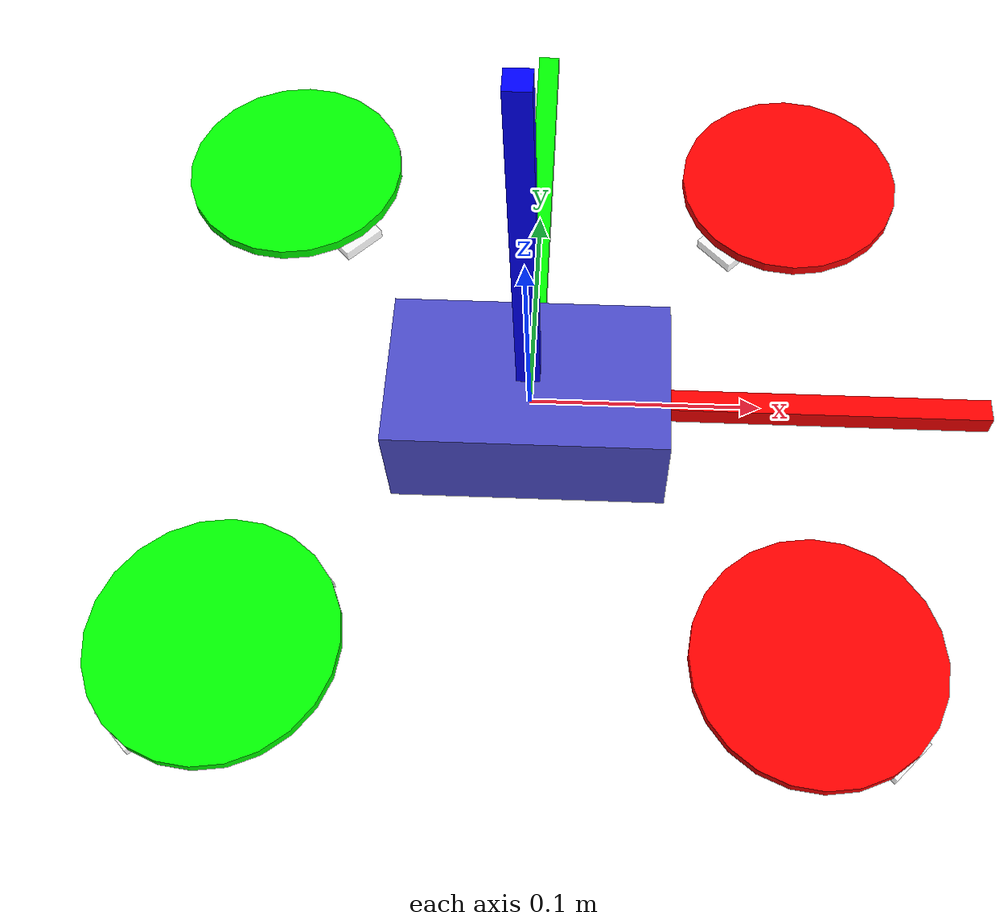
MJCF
<!-- written by Inkyu Sa, enddl22@gmail.com -->

<mujoco model="quadrotor0">
	<compiler inertiafromgeom="false" coordinate="local"/>
	<option	timestep="0.001" gravity="0 0 -9.81" density="1" viscosity="1e-5" />
	<worldbody>
		<body name="quadrotor" pos="0 0 0">
			<inertial pos="0 0 0" mass="1.0" diaginertia="0.0042 0.0042 0.0081"/>
			<geom name="core" type="box" pos="0 0 0" quat = "1. 0. 0. 0" size="0.06 0.035 0.025"  rgba="0.3 0.3 0.8 1" mass = ".0"/>

			<geom name="a00" type="box" pos="0.117 0.117 0.0" size="0.05 0.01 0.0025"  quat = ".924 0.0 0.0 0.383" rgba="1 1 1 0.7" mass = ".0"/>
			<geom name="a10" type="box" pos="0.117 -0.117 0.0" size="0.05 0.01 0.0025"  quat = ".383 0.0 0.0 0.924" rgba="1 1 1 0.7" mass = ".0"/>
			<geom name="a20" type="box" pos="-0.117 -0.117 0.0" size="0.05 0.01 0.0025"  quat = "-.383 0.0 0.0 0.924" rgba="1 1 1 0.7" mass = ".0"/>
			<geom name="a30" type="box" pos="-0.117 0.117 0.0" size="0.05 0.01 0.0025"  quat = ".924 0.0 0.0 -0.383" rgba="1 1 1 0.7" mass = ".0"/>

			<joint name="root"   type="free" damping="0" armature="0" pos="0 0 0" />

			<!-- Actuator sites to attach actuators, make it invisible -->
            <site name="thrust" type="box" pos="0 0 0"  size="0.035 0.035 0.035"  quat = "1.0 0.0 0.0 0." rgba="0 1 1 0" />
            <site name="rateX"  type="box" pos="0 0 0" quat = "1. 0. 0. 0."  size="0.06 0.035 0.025" rgba="0 1 1 0"/>
            <site name="rateY"  type="box" pos="0 0 0" quat = "1. 0. 0. 0."  size="0.06 0.035 0.025" rgba="0 1 1 0"/>
            <site name="rateZ"  type="box" pos="0 0 0" quat = "1. 0. 0. 0."  size="0.06 0.035 0.025" rgba="0 1 1 0"/>

			<!-- Thruster geometries for collisions since site's are excluded from collision checking -->
            <geom name="thruster0" type="cylinder" pos=" 0.117  0.117  0.01" size="0.05 0.0025"  quat = "1.0 0.0 0.0 0." rgba="1 0.0 0.0 1" mass = ".0"/>
            <geom name="thruster1" type="cylinder" pos=" 0.117 -0.117  0.01" size="0.05 0.0025"  quat = "1.0 0.0 0.0 0." rgba="1 0.0 0.0 1" mass = ".0"/>
            <geom name="thruster2" type="cylinder" pos="-0.117 -0.117  0.01" size="0.05 0.0025"  quat = "1.0 0.0 0.0 0." rgba="0 1 0 1" mass = ".0"/>
            <geom name="thruster3" type="cylinder" pos="-0.117 0.117  0.01" size="0.05 0.0025"  quat = "1.0 0.0 0.0 0." rgba="0 1 0 1" mass = ".0"/>

            <!-- Visualization of the coordinate frame -->
			<site name="qcX" type="box" pos="0.1 0.0 0.0" size="0.1 0.005 0.005"  quat = " 1.000  0.0  0.0    0."     rgba="1 0 0 1" />
			<site name="qcY" type="box" pos="0.0 0.1 0.0" size="0.1 0.005 0.005"  quat = " 0.707  0.0  0.0    0.707"  rgba="0 1 0 1" />
			<site name="qcZ" type="box" pos="0.0 0.0 0.1" size="0.1 0.005 0.005"  quat = "-0.707  0.0  0.707  0."     rgba="0 0 1 1" />
		</body>
	</worldbody>
    <actuator>
		<motor ctrllimited="true" ctrlrange="0.0 20.0" gear="0  0. 1. 0. 0. 0." site="thrust"/>
		<velocity ctrllimited="true" ctrlrange="-1 1" gear="0. 0. 0. 1. 0. 0." kv="0.1" site="rateX"/>
		<velocity ctrllimited="true" ctrlrange="-1 1" gear="0. 0. 0. 0. 1. 0." kv="0.1" site="rateY"/>
		<velocity ctrllimited="true" ctrlrange="-0.05 0.05" gear="0. 0. 0. 0. 0. 1." kv="0.1" site="rateZ"/>
	</actuator>
</mujoco>
